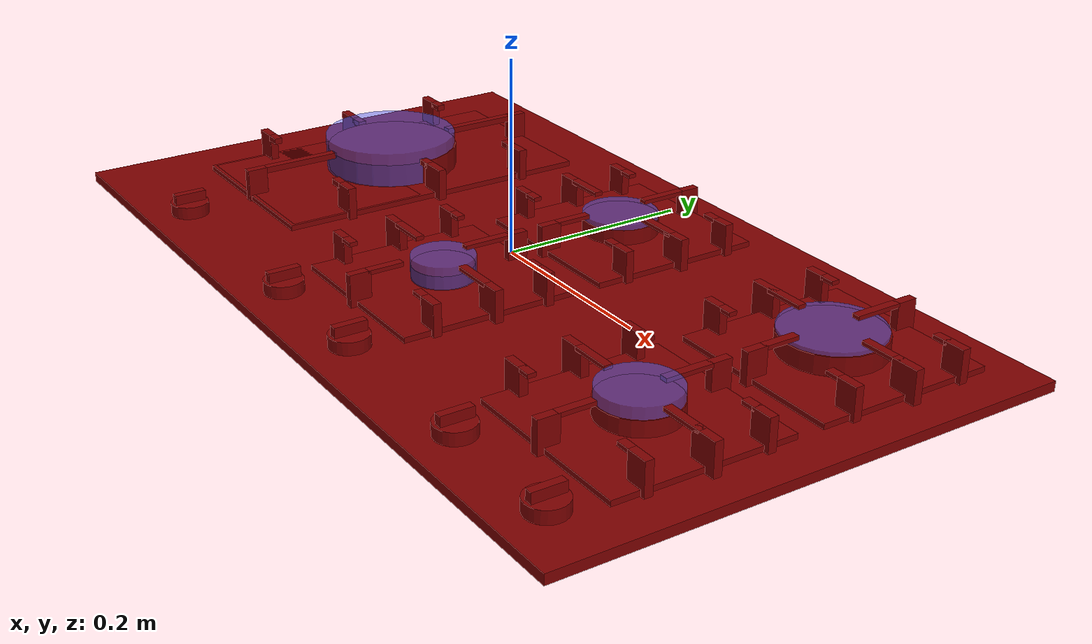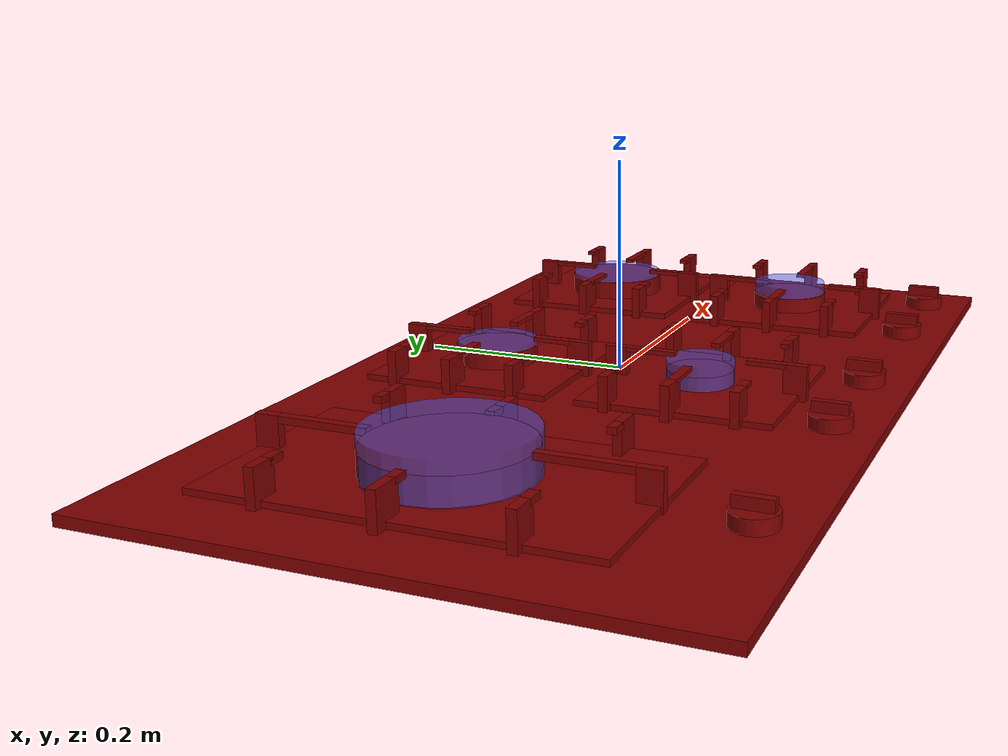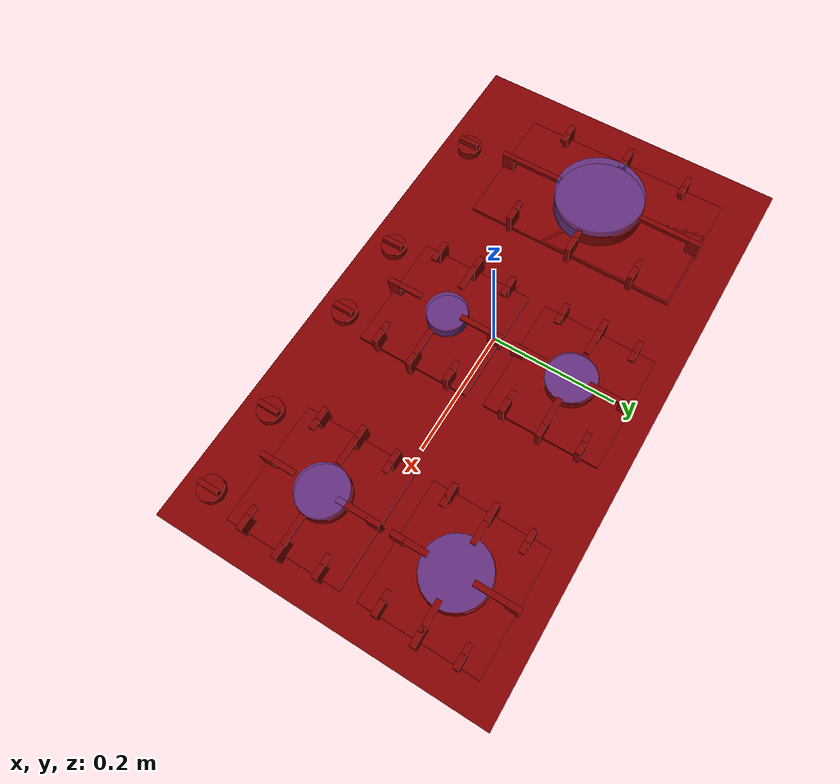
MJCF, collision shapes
<mujoco model="model">
  <compiler angle="radian"/>
  <asset>
    <mesh file="visuals/knob_front_center.obj" name="knob_front_center_vis"/>
    <mesh file="visuals/knob_front_left.obj" name="knob_front_left_vis"/>
    <mesh file="visuals/knob_front_right.obj" name="knob_front_right_vis"/>
    <mesh file="visuals/knob_rear_center.obj" name="knob_rear_center_vis"/>
    <mesh file="visuals/knob_rear_right.obj" name="knob_rear_right_vis"/>
    <mesh file="visuals/Body001.obj" name="Body001_vis"/>
    <texture file="visuals/T_BC001.png" name="Body001_material" type="2d"/>
    <material name="Body001_material" rgba="1 1 1 1.0" texture="Body001_material" shininess="0.4472135901451111" specular="0.3103448502657381"/>
    <texture file="visuals/T_BC001.png" name="knob_front_center_material" type="2d"/>
    <material name="knob_front_center_material" rgba="1 1 1 1.0" texture="knob_front_center_material" shininess="0.4472135901451111" specular="0.3103448502657381"/>
    <texture file="visuals/T_BC001.png" name="knob_front_left_material" type="2d"/>
    <material name="knob_front_left_material" rgba="1 1 1 1.0" texture="knob_front_left_material" shininess="0.4472135901451111" specular="0.3103448502657381"/>
    <texture file="visuals/T_BC001.png" name="knob_front_right_material" type="2d"/>
    <material name="knob_front_right_material" rgba="1 1 1 1.0" texture="knob_front_right_material" shininess="0.4472135901451111" specular="0.3103448502657381"/>
    <texture file="visuals/T_BC001.png" name="knob_rear_center_material" type="2d"/>
    <material name="knob_rear_center_material" rgba="1 1 1 1.0" texture="knob_rear_center_material" shininess="0.4472135901451111" specular="0.3103448502657381"/>
    <texture file="visuals/T_BC001.png" name="knob_rear_right_material" type="2d"/>
    <material name="knob_rear_right_material" rgba="1 1 1 1.0" texture="knob_rear_right_material" shininess="0.4472135901451111" specular="0.3103448502657381"/>
  </asset>
  <default>
    <default class="visual">
      <geom conaffinity="0" contype="0" group="1" type="mesh"/>
    </default>
    <default class="collision">
      <geom group="0" rgba="0.5 0 0 0.5"/>
    </default>
    <default class="spawn">
      <geom group="0" rgba="1 1 1 0.5" contype="0" conaffinity="0"/>
      <site group="0" rgba="1 1 1 0.5"/>
    </default>
    <default class="region">
      <geom group="1" conaffinity="0" contype="0" rgba="0 1 0 0"/>
    </default>
  </default>
  <worldbody>
    <body>
      <body name="object">
        <site type="cylinder" rgba="0.3 0.4 1 0.5" size="0.05077483877539635 0.01406404934823513" pos="0.32138004899024963 0.13180696964263916 0.0036384593695402145" name="burner_on_rear_right"/>
        <site type="cylinder" rgba="0.3 0.4 1 0.5" size="0.0393654890358448 0.011913847178220749" pos="0.002833153121173382 0.13147996366024017 0.0039153750985860825" name="burner_on_rear_center"/>
        <site type="cylinder" rgba="0.3 0.4 1 0.5" size="0.039059098809957504 0.015246565453708172" pos="0.3218177258968353 -0.08034220337867737 0.007172874175012112" name="burner_on_front_right"/>
        <site type="cylinder" rgba="0.3 0.4 1 0.5" size="0.07282600551843643 0.021316014230251312" pos="-0.2928401231765747 0.0239628404378891 0.01130344532430172" name="burner_on_front_left"/>
        <site type="cylinder" rgba="0.3 0.4 1 0.5" size="0.032445333898067474 0.013621526770293713" pos="0.003089639823883772 -0.08023946732282639 0.0044271694496273994" name="burner_on_front_center"/>
        <geom mesh="Body001_vis" type="mesh" solimp="0.998 0.998 0.001" solref="0.001 1" density="100" friction="0.95 0.3 0.1" class="visual" material="Body001_material"/>
        <geom class="collision" type="box" pos="0.0 -0.0009825521847233176 -0.01667611673474312" size="0.461265504360199 0.2655807435512543 0.005217754747718573" quat="1.0 0.0 0.0 0.0"/>
        <geom class="collision" type="cylinder" pos="0.002476575318723917 0.1319962590932846 0.0009098738082684577" size="0.040006786584854126 0.009824994020164013" quat="1.0 0.0 0.0 0.0"/>
        <geom class="collision" type="cylinder" pos="0.3217754065990448 0.1319962590932846 0.0011776287574321032" size="0.051779862493276596 0.01271626353263855" quat="1.0 0.0 0.0 0.0"/>
        <geom class="collision" type="cylinder" pos="0.3217754065990448 -0.08043272793292999 0.0009082662290893495" size="0.03993610292673111 0.009807635098695755" quat="1.0 0.0 0.0 0.0"/>
        <geom class="collision" type="cylinder" pos="0.0025084842927753925 -0.08043272793292999 0.0007460627239197493" size="0.0315232127904892 0.0077415709383785725" quat="1.0 0.0 0.0 0.0"/>
        <geom class="collision" type="cylinder" pos="-0.2923247814178467 0.025390811264514923 0.001644989475607872" size="0.07232952862977982 0.017762916162610054" quat="1.0 0.0 0.0 0.0"/>
        <geom class="collision" type="box" pos="-0.29256561398506165 0.024019036442041397 -0.008113525807857513" size="0.10336928069591522 0.17519940435886383 0.0028178098145872355" quat="1.0 0.0 0.0 0.0"/>
        <geom class="collision" type="box" pos="-0.37249863147735596 0.025709563866257668 0.019863061606884003" size="0.00790251325815916 0.004333646036684513 0.003179744118824601" quat="1.0 0.0 0.0 0.0"/>
        <geom class="collision" type="box" pos="-0.38957908749580383 0.13222061097621918 0.005157265346497297" size="0.012876036576926708 0.0043336465023458 0.01788540743291378" quat="1.0 0.0 0.0 0.0"/>
        <geom class="collision" type="box" pos="-0.37249863147735596 0.13222061097621918 0.019863061606884003" size="0.00790251512080431 0.004333646968007088 0.0031797445844858885" quat="1.0 0.0 0.0 0.0"/>
        <geom class="collision" type="box" pos="-0.37249863147735596 -0.0816594660282135 0.019863061606884003" size="0.007902516052126884 0.004333647433668375 0.003179744817316532" quat="1.0 0.0 0.0 0.0"/>
        <geom class="collision" type="box" pos="-0.3894428312778473 -0.0816594660282135 0.005157265346497297" size="0.012739795260131359 0.004333647899329662 0.017885413020849228" quat="1.0 0.0 0.0 0.0"/>
        <geom class="collision" type="box" pos="-0.19489802420139313 0.025709563866257668 0.005157265346497297" size="0.015382017008960247 0.00433364836499095 0.017885414883494377" quat="1.0 0.0 0.0 0.0"/>
        <geom class="collision" type="box" pos="-0.21448452770709991 -0.0816594660282135 0.019863061606884003" size="0.007902518846094608 0.004333648830652237 0.003179745515808463" quat="1.0 0.0 0.0 0.0"/>
        <geom class="collision" type="box" pos="-0.19686897099018097 0.13222061097621918 0.005157265346497297" size="0.013411137275397778 0.004333649296313524 0.017885418608784676" quat="1.0 0.0 0.0 0.0"/>
        <geom class="collision" type="box" pos="-0.21448452770709991 0.025709563866257668 0.019863061606884003" size="0.007902520708739758 0.0043336497619748116 0.0031797459814697504" quat="1.0 0.0 0.0 0.0"/>
        <geom class="collision" type="box" pos="-0.2928318977355957 -0.08920793980360031 0.019863061606884003" size="0.004333650693297386 0.041967250406742096 0.003179746214300394" quat="1.0 0.0 0.0 0.0"/>
        <geom class="collision" type="box" pos="-0.2928318977355957 -0.1422170251607895 0.005157265346497297" size="0.004333651624619961 0.010922009125351906 0.017885424196720123" quat="1.0 0.0 0.0 0.0"/>
        <geom class="collision" type="box" pos="-0.2928318977355957 0.19118137657642365 0.005157265346497297" size="0.004333652090281248 0.01092201005667448 0.017885426059365273" quat="1.0 0.0 0.0 0.0"/>
        <geom class="collision" type="box" pos="-0.2928318977355957 0.13921867311000824 0.019863061606884003" size="0.004333652090281248 0.04196726158261299 0.003179746912792325" quat="1.0 0.0 0.0 0.0"/>
        <geom class="collision" type="box" pos="0.0723433792591095 0.07099384814500809 0.01973486877977848" size="0.0071726832538843155 0.004333652090281248 0.002106668194755912" quat="1.0 0.0 0.0 0.0"/>
        <geom class="collision" type="box" pos="0.09068717062473297 0.07099384814500809 0.004556629341095686" size="0.011474892497062683 0.004333652555942535 0.01728479564189911" quat="1.0 0.0 0.0 0.0"/>
        <geom class="collision" type="box" pos="-0.08511228859424591 0.07099384814500809 0.004751797299832106" size="0.011600659228861332 0.004333653021603823 0.017479965463280678" quat="1.0 0.0 0.0 0.0"/>
        <geom class="collision" type="box" pos="-0.06859532743692398 0.07099384814500809 0.020098475739359856" size="0.007902528159320354 0.00433365348726511 0.002133397152647376" quat="1.0 0.0 0.0 0.0"/>
        <geom class="collision" type="box" pos="-0.060288503766059875 0.133208230137825 0.020098475739359856" size="0.02167053520679474 0.004333653952926397 0.0021333973854780197" quat="1.0 0.0 0.0 0.0"/>
        <geom class="collision" type="box" pos="-0.08758764714002609 0.133208230137825 0.004751797299832106" size="0.014586553908884525 0.004333654418587685 0.017479971051216125" quat="1.0 0.0 0.0 0.0"/>
        <geom class="collision" type="box" pos="-0.06859532743692398 0.19348302483558655 0.020098475739359856" size="0.007902530953288078 0.004333654884248972 0.002133397851139307" quat="1.0 0.0 0.0 0.0"/>
        <geom class="collision" type="box" pos="-0.08511228859424591 0.19348302483558655 0.004751797299832106" size="0.011600663885474205 0.004333655349910259 0.017479974776506424" quat="1.0 0.0 0.0 0.0"/>
        <geom class="collision" type="box" pos="0.09125658869743347 0.19348302483558655 0.004751797299832106" size="0.01160066481679678 0.0043336558155715466 0.017479974776506424" quat="1.0 0.0 0.0 0.0"/>
        <geom class="collision" type="box" pos="0.07473962754011154 0.19348302483558655 0.020098475739359856" size="0.007902533747255802 0.004333656281232834 0.002133398549631238" quat="1.0 0.0 0.0 0.0"/>
        <geom class="collision" type="box" pos="0.09373194724321365 0.133208230137825 0.004751797299832106" size="0.014586558565497398 0.004333656746894121 0.017479978501796722" quat="1.0 0.0 0.0 0.0"/>
        <geom class="collision" type="box" pos="0.06536394357681274 0.133208230137825 0.020098475739359856" size="0.022739410400390625 0.0043336572125554085 0.0021333990152925253" quat="1.0 0.0 0.0 0.0"/>
        <geom class="collision" type="box" pos="0.002486466895788908 0.07083971798419952 0.020098475739359856" size="0.00433365860953927 0.018760884180665016 0.002133399248123169" quat="1.0 0.0 0.0 0.0"/>
        <geom class="collision" type="box" pos="0.0024864673614501953 0.04306814819574356 0.004751797299832106" size="0.00433365860953927 0.011204469949007034 0.01747998408973217" quat="1.0 0.0 0.0 0.0"/>
        <geom class="collision" type="box" pos="0.0024864673614501953 0.21876993775367737 0.004751797299832106" size="0.004333659075200558 0.010807023383677006 0.01747998595237732" quat="1.0 0.0 0.0 0.0"/>
        <geom class="collision" type="box" pos="0.002486466895788908 0.1844785064458847 0.020098475739359856" size="0.004333660006523132 0.024883298203349113 0.0021333999466151" quat="1.0 0.0 0.0 0.0"/>
        <geom class="collision" type="box" pos="0.0037630852311849594 0.13165922462940216 -0.008113525807857513" size="0.09404740482568741 0.09322178363800049 0.0028178098145872355" quat="1.0 0.0 0.0 0.0"/>
        <geom class="collision" type="box" pos="-0.21448452770709991 0.13222061097621918 0.019863061606884003" size="0.007902541197836399 0.004333659540861845 0.003179750870913267" quat="1.0 0.0 0.0 0.0"/>
        <geom class="collision" type="box" pos="-0.39208513498306274 0.025709563866257668 0.005157265346497297" size="0.015382064506411552 0.004333660006523132 0.017885461449623108" quat="1.0 0.0 0.0 0.0"/>
        <geom class="collision" type="box" pos="-0.19713033735752106 -0.0816594660282135 0.005157265346497297" size="0.013149797916412354 0.00433366047218442 0.017885463312268257" quat="1.0 0.0 0.0 0.0"/>
        <geom class="collision" type="box" pos="0.002486466895788908 -0.03108702413737774 0.020098475739359856" size="0.004333662334829569 0.02488330751657486 0.002133401110768318" quat="1.0 0.0 0.0 0.0"/>
        <geom class="collision" type="box" pos="0.0024864673614501953 0.0032044085673987865 0.004751797299832106" size="0.004333662334829569 0.010807029902935028 0.017479998990893364" quat="1.0 0.0 0.0 0.0"/>
        <geom class="collision" type="box" pos="0.0024864673614501953 -0.17249739170074463 0.004751797299832106" size="0.004333662800490856 0.011204477399587631 0.017480000853538513" quat="1.0 0.0 0.0 0.0"/>
        <geom class="collision" type="box" pos="0.002486466895788908 -0.14472581446170807 0.020098475739359856" size="0.004333663731813431 0.018760904669761658 0.002133401809260249" quat="1.0 0.0 0.0 0.0"/>
        <geom class="collision" type="box" pos="0.06536394357681274 -0.08235730230808258 0.020098475739359856" size="0.022739434614777565 0.004333662800490856 0.002133402042090893" quat="1.0 0.0 0.0 0.0"/>
        <geom class="collision" type="box" pos="0.09373194724321365 -0.08235730230808258 0.004751797299832106" size="0.014586571604013443 0.0043336632661521435 0.01748000644147396" quat="1.0 0.0 0.0 0.0"/>
        <geom class="collision" type="box" pos="0.07473962754011154 -0.022082507610321045 0.020098475739359856" size="0.007902548648416996 0.004333663731813431 0.00213340250775218" quat="1.0 0.0 0.0 0.0"/>
        <geom class="collision" type="box" pos="0.09125658869743347 -0.022082507610321045 0.004751797299832106" size="0.011600682511925697 0.004333664197474718 0.01748001016676426" quat="1.0 0.0 0.0 0.0"/>
        <geom class="collision" type="box" pos="-0.08511228859424591 -0.022082507610321045 0.004751797299832106" size="0.011600683443248272 0.004333664663136005 0.01748001202940941" quat="1.0 0.0 0.0 0.0"/>
        <geom class="collision" type="box" pos="-0.06859532743692398 -0.022082507610321045 0.020098475739359856" size="0.00790255144238472 0.004333665128797293 0.002133403206244111" quat="1.0 0.0 0.0 0.0"/>
        <geom class="collision" type="box" pos="-0.08758764714002609 -0.08235730230808258 0.004751797299832106" size="0.014586576260626316 0.00433366559445858 0.017480015754699707" quat="1.0 0.0 0.0 0.0"/>
        <geom class="collision" type="box" pos="-0.060288503766059875 -0.08235730230808258 0.020098475739359856" size="0.02167058363556862 0.004333666060119867 0.0021334034390747547" quat="1.0 0.0 0.0 0.0"/>
        <geom class="collision" type="box" pos="-0.06859532743692398 -0.1445716917514801 0.020098475739359856" size="0.007902554236352444 0.004333666525781155 0.0021334036719053984" quat="1.0 0.0 0.0 0.0"/>
        <geom class="collision" type="box" pos="-0.08511228859424591 -0.1445716917514801 0.004751797299832106" size="0.011600688099861145 0.004333666991442442 0.017480021342635155" quat="1.0 0.0 0.0 0.0"/>
        <geom class="collision" type="box" pos="0.09068717062473297 -0.1445716917514801 0.004556629341095686" size="0.01147492229938507 0.004333667457103729 0.017284855246543884" quat="1.0 0.0 0.0 0.0"/>
        <geom class="collision" type="box" pos="0.0723433792591095 -0.1445716917514801 0.01973486877977848" size="0.007172699086368084 0.0043336679227650166 0.002106676110997796" quat="1.0 0.0 0.0 0.0"/>
        <geom class="collision" type="box" pos="0.0037630852311849594 -0.08390630781650543 -0.008113525807857513" size="0.09404740482568741 0.09322178363800049 0.0028178098145872355" quat="1.0 0.0 0.0 0.0"/>
        <geom class="collision" type="box" pos="0.3914804458618164 -0.1445716917514801 0.01973486877977848" size="0.007172700017690659 0.004333668854087591 0.0021066765766590834" quat="1.0 0.0 0.0 0.0"/>
        <geom class="collision" type="box" pos="0.4098241925239563 -0.1445716917514801 0.004556629341095686" size="0.01147492602467537 0.0043336693197488785 0.01728486269712448" quat="1.0 0.0 0.0 0.0"/>
        <geom class="collision" type="box" pos="0.2340247482061386 -0.1445716917514801 0.004751797299832106" size="0.011600692756474018 0.004333669785410166 0.01748003251850605" quat="1.0 0.0 0.0 0.0"/>
        <geom class="collision" type="box" pos="0.25054171681404114 -0.1445716917514801 0.020098475739359856" size="0.00790256168693304 0.004333670251071453 0.0021334055345505476" quat="1.0 0.0 0.0 0.0"/>
        <geom class="collision" type="box" pos="0.25884851813316345 -0.08235730230808258 0.020098475739359856" size="0.02167060226202011 0.00433367071673274 0.0021334057673811913" quat="1.0 0.0 0.0 0.0"/>
        <geom class="collision" type="box" pos="0.23154939711093903 -0.08235730230808258 0.004751797299832106" size="0.014586587436497211 0.004333671182394028 0.017480038106441498" quat="1.0 0.0 0.0 0.0"/>
        <geom class="collision" type="box" pos="0.25054171681404114 -0.022082507610321045 0.020098475739359856" size="0.007902564480900764 0.004333671648055315 0.0021334062330424786" quat="1.0 0.0 0.0 0.0"/>
        <geom class="collision" type="box" pos="0.2340247482061386 -0.022082507610321045 0.004751797299832106" size="0.011600697413086891 0.004333672113716602 0.017480041831731796" quat="1.0 0.0 0.0 0.0"/>
        <geom class="collision" type="box" pos="0.410393625497818 -0.022082507610321045 0.004751797299832106" size="0.011600698344409466 0.00433367257937789 0.017480041831731796" quat="1.0 0.0 0.0 0.0"/>
        <geom class="collision" type="box" pos="0.39387667179107666 -0.022082507610321045 0.020098475739359856" size="0.007902567274868488 0.004333673045039177 0.0021334069315344095" quat="1.0 0.0 0.0 0.0"/>
        <geom class="collision" type="box" pos="0.4128689765930176 -0.08235730230808258 0.004751797299832106" size="0.014586592093110085 0.004333673510700464 0.017480045557022095" quat="1.0 0.0 0.0 0.0"/>
        <geom class="collision" type="box" pos="0.38450098037719727 -0.08235730230808258 0.020098475739359856" size="0.022739477455615997 0.0043336739763617516 0.002133407397195697" quat="1.0 0.0 0.0 0.0"/>
        <geom class="collision" type="box" pos="0.3216235041618347 -0.14472581446170807 0.020098475739359856" size="0.0043336753733456135 0.01876095123589039 0.0021334076300263405" quat="1.0 0.0 0.0 0.0"/>
        <geom class="collision" type="box" pos="0.3216235041618347 -0.17249739170074463 0.004751797299832106" size="0.0043336753733456135 0.01120450347661972 0.017480051144957542" quat="1.0 0.0 0.0 0.0"/>
        <geom class="collision" type="box" pos="0.3216235041618347 0.0032044085673987865 0.004751797299832106" size="0.004333675839006901 0.010807056911289692 0.01748005300760269" quat="1.0 0.0 0.0 0.0"/>
        <geom class="collision" type="box" pos="0.3216235041618347 -0.03108702413737774 0.020098475739359856" size="0.004333676770329475 0.024883365258574486 0.0021334083285182714" quat="1.0 0.0 0.0 0.0"/>
        <geom class="collision" type="box" pos="0.32290011644363403 -0.08390630781650543 -0.008113525807857513" size="0.09404740482568741 0.09322178363800049 0.0028178098145872355" quat="1.0 0.0 0.0 0.0"/>
        <geom class="collision" type="box" pos="0.3216235041618347 0.18349403142929077 0.020098475739359856" size="0.00433367770165205 0.024883368983864784 0.0021334087941795588" quat="1.0 0.0 0.0 0.0"/>
        <geom class="collision" type="box" pos="0.3216235041618347 0.21778546273708344 0.004751797299832106" size="0.00433367770165205 0.01080706063657999 0.01748006045818329" quat="1.0 0.0 0.0 0.0"/>
        <geom class="collision" type="box" pos="0.3216235041618347 0.069855235517025 0.020098475739359856" size="0.004333678632974625 0.018760964274406433 0.002133409259840846" quat="1.0 0.0 0.0 0.0"/>
        <geom class="collision" type="box" pos="0.38450098037719727 0.13222375512123108 0.020098475739359856" size="0.02273949421942234 0.00433367770165205 0.0021334094926714897" quat="1.0 0.0 0.0 0.0"/>
        <geom class="collision" type="box" pos="0.4128689765930176 0.13222375512123108 0.004751797299832106" size="0.01458660140633583 0.004333678167313337 0.017480066046118736" quat="1.0 0.0 0.0 0.0"/>
        <geom class="collision" type="box" pos="0.39387667179107666 0.19249854981899261 0.020098475739359856" size="0.007902578450739384 0.004333678632974625 0.002133409958332777" quat="1.0 0.0 0.0 0.0"/>
        <geom class="collision" type="box" pos="0.410393625497818 0.19249854981899261 0.004751797299832106" size="0.011600712314248085 0.004333679098635912 0.017480069771409035" quat="1.0 0.0 0.0 0.0"/>
        <geom class="collision" type="box" pos="0.2340247482061386 0.19249854981899261 0.004751797299832106" size="0.01160071324557066 0.004333679564297199 0.017480071634054184" quat="1.0 0.0 0.0 0.0"/>
        <geom class="collision" type="box" pos="0.3216235041618347 0.04208366200327873 0.004751797299832106" size="0.004333680961281061 0.011204513721168041 0.017480073496699333" quat="1.0 0.0 0.0 0.0"/>
        <geom class="collision" type="box" pos="0.23154939711093903 0.13222375512123108 0.004751797299832106" size="0.014586606062948704 0.004333680495619774 0.017480075359344482" quat="1.0 0.0 0.0 0.0"/>
        <geom class="collision" type="box" pos="0.25884851813316345 0.13222375512123108 0.020098475739359856" size="0.021670643240213394 0.004333680961281061 0.0021334111224859953" quat="1.0 0.0 0.0 0.0"/>
        <geom class="collision" type="box" pos="0.25054171681404114 0.07000935822725296 0.020098475739359856" size="0.007902584038674831 0.0043336814269423485 0.002133411355316639" quat="1.0 0.0 0.0 0.0"/>
        <geom class="collision" type="box" pos="0.2340247482061386 0.07000935822725296 0.004751797299832106" size="0.011600717902183533 0.004333681892603636 0.01748008094727993" quat="1.0 0.0 0.0 0.0"/>
        <geom class="collision" type="box" pos="0.4098241925239563 0.07000935822725296 0.004556629341095686" size="0.011474952101707458 0.004333682358264923 0.01728491485118866" quat="1.0 0.0 0.0 0.0"/>
        <geom class="collision" type="box" pos="0.3914804458618164 0.07000935822725296 0.01973486877977848" size="0.007172713987529278 0.00433368282392621 0.002106683561578393" quat="1.0 0.0 0.0 0.0"/>
        <geom class="collision" type="box" pos="0.25054171681404114 0.19249854981899261 0.020098475739359856" size="0.00790258776396513 0.004333683289587498 0.00213341205380857" quat="1.0 0.0 0.0 0.0"/>
        <geom class="collision" type="box" pos="-0.29267242550849915 0.0249951034784317 -0.008113525807857513" size="0.10029855370521545 0.17185451090335846 0.0028178098145872355" quat="1.0 0.0 0.0 0.0"/>
        <geom class="collision" type="box" pos="0.32290011644363403 0.13067474961280823 -0.008113525807857513" size="0.09404740482568741 0.09322178363800049 0.0028178098145872355" quat="1.0 0.0 0.0 0.0"/>
        <body name="knob_front_center">
          <joint axis="0.0 0.0 1.0" pos="0.07494843006134033 -0.22076316177845 -0.0113759096711874" limited="true" name="knob_front_center_joint" range="0.0 3.6651914291880923" type="hinge" damping="1" frictionloss="1" armature=".01" stiffness="0.05"/>
          <geom mesh="knob_front_center_vis" type="mesh" solimp="0.998 0.998 0.001" solref="0.001 1" density="100" friction="0.95 0.3 0.1" class="visual" material="knob_front_center_material"/>
          <geom class="collision" type="cylinder" pos="0.07497807592153549 -0.22070854902267456 -0.004485631361603737" size="0.01997859589755535 0.0065056500025093555" quat="1.0 0.0 0.0 0.0"/>
          <geom class="collision" type="box" pos="0.07496140897274017 -0.22044958174228668 0.006640871986746788" size="0.004127315245568752 0.016763195395469666 0.005789220333099365" quat="1.0 0.0 0.0 0.0"/>
        </body>
        <body name="knob_front_left">
          <joint axis="0.0 0.0 1.0" pos="-0.29259026050567627 -0.22076316177845 -0.0113759096711874" limited="true" name="knob_front_left_joint" range="0.0 3.6651914291880923" type="hinge" damping="1" frictionloss="1" armature=".01" stiffness="0.05"/>
          <geom mesh="knob_front_left_vis" type="mesh" solimp="0.998 0.998 0.001" solref="0.001 1" density="100" friction="0.95 0.3 0.1" class="visual" material="knob_front_left_material"/>
          <geom class="collision" type="box" pos="-0.29272910952568054 -0.22044958174228668 0.006640871986746788" size="0.004127315245568752 0.016763195395469666 0.005789220333099365" quat="1.0 0.0 0.0 0.0"/>
          <geom class="collision" type="cylinder" pos="-0.2927124500274658 -0.22070854902267456 -0.004485631361603737" size="0.01997859589755535 0.0065056500025093555" quat="1.0 0.0 0.0 0.0"/>
        </body>
        <body name="knob_front_right">
          <joint axis="0.0 0.0 1.0" pos="0.394461065530777 -0.22076316177845 -0.0113759096711874" limited="true" name="knob_front_right_joint" range="0.0 3.6651914291880923" type="hinge" damping="1" frictionloss="1" armature=".01" stiffness="0.05"/>
          <geom mesh="knob_front_right_vis" type="mesh" solimp="0.998 0.998 0.001" solref="0.001 1" density="100" friction="0.95 0.3 0.1" class="visual" material="knob_front_right_material"/>
          <geom class="collision" type="cylinder" pos="0.39490675926208496 -0.22070854902267456 -0.004485631361603737" size="0.01997859589755535 0.0065056500025093555" quat="1.0 0.0 0.0 0.0"/>
          <geom class="collision" type="box" pos="0.39489009976387024 -0.22044958174228668 0.006640871986746788" size="0.004127315245568752 0.016763195395469666 0.005789220333099365" quat="1.0 0.0 0.0 0.0"/>
        </body>
        <body name="knob_rear_center">
          <joint axis="0.0 0.0 1.0" pos="-0.061288073658943176 -0.22076316177845 -0.0113759096711874" limited="true" name="knob_rear_center_joint" range="0.0 3.6651914291880923" type="hinge" damping="1" frictionloss="1" armature=".01" stiffness="0.05"/>
          <geom mesh="knob_rear_center_vis" type="mesh" solimp="0.998 0.998 0.001" solref="0.001 1" density="100" friction="0.95 0.3 0.1" class="visual" material="knob_rear_center_material"/>
          <geom class="collision" type="cylinder" pos="-0.06126513332128525 -0.22070854902267456 -0.004485631361603737" size="0.01997859589755535 0.0065056500025093555" quat="1.0 0.0 0.0 0.0"/>
          <geom class="collision" type="box" pos="-0.061281800270080566 -0.22044958174228668 0.006640871986746788" size="0.004127315245568752 0.016763195395469666 0.005789220333099365" quat="1.0 0.0 0.0 0.0"/>
        </body>
        <body name="knob_rear_right">
          <joint axis="0.0 0.0 1.0" pos="0.261519193649292 -0.22076316177845 -0.0113759096711874" limited="true" name="knob_rear_right_joint" range="0.0 3.6651914291880923" type="hinge" damping="1" frictionloss="1" armature=".01" stiffness="0.05"/>
          <geom mesh="knob_rear_right_vis" type="mesh" solimp="0.998 0.998 0.001" solref="0.001 1" density="100" friction="0.95 0.3 0.1" class="visual" material="knob_rear_right_material"/>
          <geom class="collision" type="cylinder" pos="0.26088088750839233 -0.22070854902267456 -0.004485631361603737" size="0.01997859589755535 0.0065056500025093555" quat="1.0 0.0 0.0 0.0"/>
          <geom class="collision" type="box" pos="0.2608642280101776 -0.22044958174228668 0.006640871986746788" size="0.004127315245568752 0.016763195395469666 0.005789220333099365" quat="1.0 0.0 0.0 0.0"/>
        </body>
        <geom class="region" name="reg_main" type="box" pos="1.0624527931213379e-05 4.0978193283081055e-06 -0.015665527433156967" size="0.45945072174072266 0.26195669174194336 0.005702168680727482"/>
      </body>
    </body>
  </worldbody>
  <actuator>
    <motor name="knob_front_center_joint_actuator" joint="knob_front_center_joint" gear="10"/>
    <motor name="knob_front_left_joint_actuator" joint="knob_front_left_joint" gear="10"/>
    <motor name="knob_front_right_joint_actuator" joint="knob_front_right_joint" gear="10"/>
    <motor name="knob_rear_center_joint_actuator" joint="knob_rear_center_joint" gear="10"/>
    <motor name="knob_rear_right_joint_actuator" joint="knob_rear_right_joint" gear="10"/>
  </actuator>
</mujoco>
